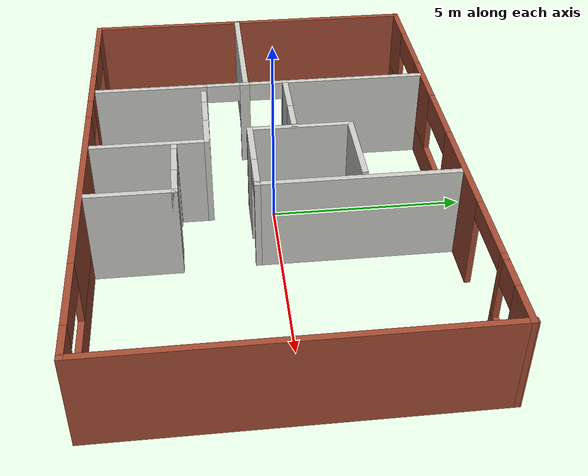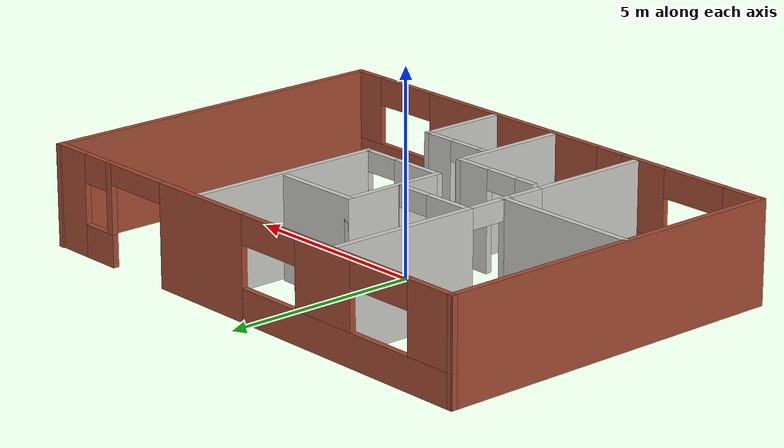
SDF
<?xml version='1.0'?>
<sdf version='1.6'>
  <model name='myhouse'>
    <pose frame=''>0.260364 -0.113951 0 0 -0 0</pose>
    <link name='Wall_38'>
      <collision name='Wall_38_Collision'>
        <geometry>
          <box>
            <size>9.28418 0.15 2.5</size>
          </box>
        </geometry>
        <pose frame=''>0 0 1.25 0 -0 0</pose>
      </collision>
      <visual name='Wall_38_Visual'>
        <pose frame=''>0 0 1.25 0 -0 0</pose>
        <geometry>
          <box>
            <size>9.28418 0.15 2.5</size>
          </box>
        </geometry>
        <material>
          <script>
            <uri>file://media/materials/scripts/gazebo.material</uri>
            <name>Gazebo/Bricks</name>
          </script>
          <ambient>0.996078 0.47451 0.0196078 1</ambient>
        </material>
      </visual>
      <pose frame=''>-6.69036 -4.9e-05 0 0 0 -1.5708</pose>
    </link>
    <link name='Wall_39'>
      <pose frame=''>0.000136 -4.56705 0 0 -0 0</pose>
      <visual name='Wall_39_Visual_0'>
        <pose frame=''>-6.18995 0 1.25 0 -0 0</pose>
        <geometry>
          <box>
            <size>1.1511 0.15 2.5</size>
          </box>
        </geometry>
        <material>
          <script>
            <uri>file://media/materials/scripts/gazebo.material</uri>
            <name>Gazebo/Bricks</name>
          </script>
          <ambient>0.996078 0.47451 0.0196078 1</ambient>
        </material>
      </visual>
      <collision name='Wall_39_Collision_0'>
        <geometry>
          <box>
            <size>1.1511 0.15 2.5</size>
          </box>
        </geometry>
        <pose frame=''>-6.18995 0 1.25 0 -0 0</pose>
      </collision>
      <visual name='Wall_39_Visual_1'>
        <pose frame=''>0.575549 0 0.4 0 -0 0</pose>
        <geometry>
          <box>
            <size>12.3799 0.15 0.8</size>
          </box>
        </geometry>
        <material>
          <script>
            <uri>file://media/materials/scripts/gazebo.material</uri>
            <name>Gazebo/Bricks</name>
          </script>
          <ambient>0.996078 0.47451 0.0196078 1</ambient>
        </material>
      </visual>
      <collision name='Wall_39_Collision_1'>
        <geometry>
          <box>
            <size>12.3799 0.15 0.8</size>
          </box>
        </geometry>
        <pose frame=''>0.575549 0 0.4 0 -0 0</pose>
      </collision>
      <visual name='Wall_39_Visual_2'>
        <pose frame=''>-3.14182 0 1.65 0 -0 0</pose>
        <geometry>
          <box>
            <size>1.34517 0.15 1.7</size>
          </box>
        </geometry>
        <material>
          <script>
            <uri>file://media/materials/scripts/gazebo.material</uri>
            <name>Gazebo/Bricks</name>
          </script>
          <ambient>0.996078 0.47451 0.0196078 1</ambient>
        </material>
      </visual>
      <collision name='Wall_39_Collision_2'>
        <geometry>
          <box>
            <size>1.34517 0.15 1.7</size>
          </box>
        </geometry>
        <pose frame=''>-3.14182 0 1.65 0 -0 0</pose>
      </collision>
      <visual name='Wall_39_Visual_3'>
        <pose frame=''>1.19211 0 1.65 0 -0 0</pose>
        <geometry>
          <box>
            <size>5.72269 0.15 1.7</size>
          </box>
        </geometry>
        <material>
          <script>
            <uri>file://media/materials/scripts/gazebo.material</uri>
            <name>Gazebo/Bricks</name>
          </script>
          <ambient>0.996078 0.47451 0.0196078 1</ambient>
        </material>
      </visual>
      <collision name='Wall_39_Collision_3'>
        <geometry>
          <box>
            <size>5.72269 0.15 1.7</size>
          </box>
        </geometry>
        <pose frame=''>1.19211 0 1.65 0 -0 0</pose>
      </collision>
      <visual name='Wall_39_Visual_4'>
        <pose frame=''>6.30948 0 1.65 0 -0 0</pose>
        <geometry>
          <box>
            <size>0.912041 0.15 1.7</size>
          </box>
        </geometry>
        <material>
          <script>
            <uri>file://media/materials/scripts/gazebo.material</uri>
            <name>Gazebo/Bricks</name>
          </script>
          <ambient>0.996078 0.47451 0.0196078 1</ambient>
        </material>
      </visual>
      <collision name='Wall_39_Collision_4'>
        <geometry>
          <box>
            <size>0.912041 0.15 1.7</size>
          </box>
        </geometry>
        <pose frame=''>6.30948 0 1.65 0 -0 0</pose>
      </collision>
      <visual name='Wall_39_Visual_5'>
        <pose frame=''>-4.7144 0 2.15 0 -0 0</pose>
        <geometry>
          <box>
            <size>1.8 0.15 0.7</size>
          </box>
        </geometry>
        <material>
          <script>
            <uri>file://media/materials/scripts/gazebo.material</uri>
            <name>Gazebo/Bricks</name>
          </script>
          <ambient>0.996078 0.47451 0.0196078 1</ambient>
        </material>
      </visual>
      <collision name='Wall_39_Collision_5'>
        <geometry>
          <box>
            <size>1.8 0.15 0.7</size>
          </box>
        </geometry>
        <pose frame=''>-4.7144 0 2.15 0 -0 0</pose>
      </collision>
      <visual name='Wall_39_Visual_6'>
        <pose frame=''>-2.06923 0 2.15 0 -0 0</pose>
        <geometry>
          <box>
            <size>0.8 0.15 0.7</size>
          </box>
        </geometry>
        <material>
          <script>
            <uri>file://media/materials/scripts/gazebo.material</uri>
            <name>Gazebo/Bricks</name>
          </script>
          <ambient>0.996078 0.47451 0.0196078 1</ambient>
        </material>
      </visual>
      <collision name='Wall_39_Collision_6'>
        <geometry>
          <box>
            <size>0.8 0.15 0.7</size>
          </box>
        </geometry>
        <pose frame=''>-2.06923 0 2.15 0 -0 0</pose>
      </collision>
      <visual name='Wall_39_Visual_7'>
        <pose frame=''>4.95346 0 2.15 0 -0 0</pose>
        <geometry>
          <box>
            <size>1.8 0.15 0.7</size>
          </box>
        </geometry>
        <material>
          <script>
            <uri>file://media/materials/scripts/gazebo.material</uri>
            <name>Gazebo/Bricks</name>
          </script>
          <ambient>0.996078 0.47451 0.0196078 1</ambient>
        </material>
      </visual>
      <collision name='Wall_39_Collision_7'>
        <geometry>
          <box>
            <size>1.8 0.15 0.7</size>
          </box>
        </geometry>
        <pose frame=''>4.95346 0 2.15 0 -0 0</pose>
      </collision>
    </link>
    <link name='Wall_40'>
      <collision name='Wall_40_Collision'>
        <geometry>
          <box>
            <size>9.28418 0.15 2.5</size>
          </box>
        </geometry>
        <pose frame=''>0 0 1.25 0 -0 0</pose>
      </collision>
      <visual name='Wall_40_Visual'>
        <pose frame=''>0 0 1.25 0 -0 0</pose>
        <geometry>
          <box>
            <size>9.28418 0.15 2.5</size>
          </box>
        </geometry>
        <material>
          <script>
            <uri>file://media/materials/scripts/gazebo.material</uri>
            <name>Gazebo/Bricks</name>
          </script>
          <ambient>0.996078 0.47451 0.0196078 1</ambient>
        </material>
      </visual>
      <pose frame=''>6.69014 4.1e-05 0 0 -0 1.57091</pose>
    </link>
    <link name='Wall_41'>
      <pose frame=''>-0.000364 4.55175 0 0 -0 3.13932</pose>
      <visual name='Wall_41_Visual_0'>
        <pose frame=''>-6.23299 0 1.25 0 -0 0</pose>
        <geometry>
          <box>
            <size>1.06429 0.15 2.5</size>
          </box>
        </geometry>
        <material>
          <script>
            <uri>file://media/materials/scripts/gazebo.material</uri>
            <name>Gazebo/Bricks</name>
          </script>
          <ambient>0.996078 0.47451 0.0196078 1</ambient>
        </material>
      </visual>
      <collision name='Wall_41_Collision_0'>
        <geometry>
          <box>
            <size>1.06429 0.15 2.5</size>
          </box>
        </geometry>
        <pose frame=''>-6.23299 0 1.25 0 -0 0</pose>
      </collision>
      <visual name='Wall_41_Visual_1'>
        <pose frame=''>-1.44735 0 1.25 0 -0 0</pose>
        <geometry>
          <box>
            <size>2.90668 0.15 2.5</size>
          </box>
        </geometry>
        <material>
          <script>
            <uri>file://media/materials/scripts/gazebo.material</uri>
            <name>Gazebo/Bricks</name>
          </script>
          <ambient>0.996078 0.47451 0.0196078 1</ambient>
        </material>
      </visual>
      <collision name='Wall_41_Collision_1'>
        <geometry>
          <box>
            <size>2.90668 0.15 2.5</size>
          </box>
        </geometry>
        <pose frame=''>-1.44735 0 1.25 0 -0 0</pose>
      </collision>
      <visual name='Wall_41_Visual_2'>
        <pose frame=''>-5.20076 0 0.4 0 -0 0</pose>
        <geometry>
          <box>
            <size>1.00016 0.15 0.8</size>
          </box>
        </geometry>
        <material>
          <script>
            <uri>file://media/materials/scripts/gazebo.material</uri>
            <name>Gazebo/Bricks</name>
          </script>
          <ambient>0.996078 0.47451 0.0196078 1</ambient>
        </material>
      </visual>
      <collision name='Wall_41_Collision_2'>
        <geometry>
          <box>
            <size>1.00016 0.15 0.8</size>
          </box>
        </geometry>
        <pose frame=''>-5.20076 0 0.4 0 -0 0</pose>
      </collision>
      <visual name='Wall_41_Visual_3'>
        <pose frame=''>3.38556 0 0.4 0 -0 0</pose>
        <geometry>
          <box>
            <size>6.75914 0.15 0.8</size>
          </box>
        </geometry>
        <material>
          <script>
            <uri>file://media/materials/scripts/gazebo.material</uri>
            <name>Gazebo/Bricks</name>
          </script>
          <ambient>0.996078 0.47451 0.0196078 1</ambient>
        </material>
      </visual>
      <collision name='Wall_41_Collision_3'>
        <geometry>
          <box>
            <size>6.75914 0.15 0.8</size>
          </box>
        </geometry>
        <pose frame=''>3.38556 0 0.4 0 -0 0</pose>
      </collision>
      <visual name='Wall_41_Visual_4'>
        <pose frame=''>-4.80076 0 1.65 0 -0 0</pose>
        <geometry>
          <box>
            <size>0.200157 0.15 1.7</size>
          </box>
        </geometry>
        <material>
          <script>
            <uri>file://media/materials/scripts/gazebo.material</uri>
            <name>Gazebo/Bricks</name>
          </script>
          <ambient>0.996078 0.47451 0.0196078 1</ambient>
        </material>
      </visual>
      <collision name='Wall_41_Collision_4'>
        <geometry>
          <box>
            <size>0.200157 0.15 1.7</size>
          </box>
        </geometry>
        <pose frame=''>-4.80076 0 1.65 0 -0 0</pose>
      </collision>
      <visual name='Wall_41_Visual_5'>
        <pose frame=''>-4.80076 0 1.65 0 -0 0</pose>
        <geometry>
          <box>
            <size>0.200157 0.15 1.7</size>
          </box>
        </geometry>
        <material>
          <script>
            <uri>file://media/materials/scripts/gazebo.material</uri>
            <name>Gazebo/Bricks</name>
          </script>
          <ambient>0.996078 0.47451 0.0196078 1</ambient>
        </material>
      </visual>
      <collision name='Wall_41_Collision_5'>
        <geometry>
          <box>
            <size>0.200157 0.15 1.7</size>
          </box>
        </geometry>
        <pose frame=''>-4.80076 0 1.65 0 -0 0</pose>
      </collision>
      <visual name='Wall_41_Visual_6'>
        <pose frame=''>2.70554 0 1.65 0 -0 0</pose>
        <geometry>
          <box>
            <size>1.79911 0.15 1.7</size>
          </box>
        </geometry>
        <material>
          <script>
            <uri>file://media/materials/scripts/gazebo.material</uri>
            <name>Gazebo/Bricks</name>
          </script>
          <ambient>0.996078 0.47451 0.0196078 1</ambient>
        </material>
      </visual>
      <collision name='Wall_41_Collision_6'>
        <geometry>
          <box>
            <size>1.79911 0.15 1.7</size>
          </box>
        </geometry>
        <pose frame=''>2.70554 0 1.65 0 -0 0</pose>
      </collision>
      <visual name='Wall_41_Visual_7'>
        <pose frame=''>6.08511 0 1.65 0 -0 0</pose>
        <geometry>
          <box>
            <size>1.36003 0.15 1.7</size>
          </box>
        </geometry>
        <material>
          <script>
            <uri>file://media/materials/scripts/gazebo.material</uri>
            <name>Gazebo/Bricks</name>
          </script>
          <ambient>0.996078 0.47451 0.0196078 1</ambient>
        </material>
      </visual>
      <collision name='Wall_41_Collision_7'>
        <geometry>
          <box>
            <size>1.36003 0.15 1.7</size>
          </box>
        </geometry>
        <pose frame=''>6.08511 0 1.65 0 -0 0</pose>
      </collision>
      <visual name='Wall_41_Visual_8'>
        <pose frame=''>-5.30084 0 2.15 0 -0 0</pose>
        <geometry>
          <box>
            <size>0.8 0.15 0.7</size>
          </box>
        </geometry>
        <material>
          <script>
            <uri>file://media/materials/scripts/gazebo.material</uri>
            <name>Gazebo/Bricks</name>
          </script>
          <ambient>0.996078 0.47451 0.0196078 1</ambient>
        </material>
      </visual>
      <collision name='Wall_41_Collision_8'>
        <geometry>
          <box>
            <size>0.8 0.15 0.7</size>
          </box>
        </geometry>
        <pose frame=''>-5.30084 0 2.15 0 -0 0</pose>
      </collision>
      <visual name='Wall_41_Visual_9'>
        <pose frame=''>0.905991 0 2.15 0 -0 0</pose>
        <geometry>
          <box>
            <size>1.8 0.15 0.7</size>
          </box>
        </geometry>
        <material>
          <script>
            <uri>file://media/materials/scripts/gazebo.material</uri>
            <name>Gazebo/Bricks</name>
          </script>
          <ambient>0.996078 0.47451 0.0196078 1</ambient>
        </material>
      </visual>
      <collision name='Wall_41_Collision_9'>
        <geometry>
          <box>
            <size>1.8 0.15 0.7</size>
          </box>
        </geometry>
        <pose frame=''>0.905991 0 2.15 0 -0 0</pose>
      </collision>
      <visual name='Wall_41_Visual_10'>
        <pose frame=''>4.5051 0 2.15 0 -0 0</pose>
        <geometry>
          <box>
            <size>1.8 0.15 0.7</size>
          </box>
        </geometry>
        <material>
          <script>
            <uri>file://media/materials/scripts/gazebo.material</uri>
            <name>Gazebo/Bricks</name>
          </script>
          <ambient>0.996078 0.47451 0.0196078 1</ambient>
        </material>
      </visual>
      <collision name='Wall_41_Collision_10'>
        <geometry>
          <box>
            <size>1.8 0.15 0.7</size>
          </box>
        </geometry>
        <pose frame=''>4.5051 0 2.15 0 -0 0</pose>
      </collision>
      <visual name='Wall_41_Visual_11'>
        <pose frame=''>-3.80068 0 2.25 0 -0 0</pose>
        <geometry>
          <box>
            <size>1.8 0.15 0.5</size>
          </box>
        </geometry>
        <material>
          <script>
            <uri>file://media/materials/scripts/gazebo.material</uri>
            <name>Gazebo/Bricks</name>
          </script>
          <ambient>0.996078 0.47451 0.0196078 1</ambient>
        </material>
      </visual>
      <collision name='Wall_41_Collision_11'>
        <geometry>
          <box>
            <size>1.8 0.15 0.5</size>
          </box>
        </geometry>
        <pose frame=''>-3.80068 0 2.25 0 -0 0</pose>
      </collision>
      <visual name='Wall_41_Visual_12'>
        <pose frame=''>-3.80068 0 2.25 0 -0 0</pose>
        <geometry>
          <box>
            <size>1.8 0.15 0.5</size>
          </box>
        </geometry>
        <material>
          <script>
            <uri>file://media/materials/scripts/gazebo.material</uri>
            <name>Gazebo/Bricks</name>
          </script>
          <ambient>0.996078 0.47451 0.0196078 1</ambient>
        </material>
      </visual>
      <collision name='Wall_41_Collision_12'>
        <geometry>
          <box>
            <size>1.8 0.15 0.5</size>
          </box>
        </geometry>
        <pose frame=''>-3.80068 0 2.25 0 -0 0</pose>
      </collision>
    </link>
    <link name='Wall_43'>
      <pose frame=''>-2.95236 0.022951 0 0 0 -1.5708</pose>
      <visual name='Wall_43_Visual_0'>
        <pose frame=''>-2.54618 0 1.25 0 -0 0</pose>
        <geometry>
          <box>
            <size>3.90763 0.15 2.5</size>
          </box>
        </geometry>
        <material>
          <script>
            <uri>file://media/materials/scripts/gazebo.material</uri>
            <name>Gazebo/CeilingTiled</name>
          </script>
          <ambient>0.760784 0.662745 0.627451 1</ambient>
        </material>
      </visual>
      <collision name='Wall_43_Collision_0'>
        <geometry>
          <box>
            <size>3.90763 0.15 2.5</size>
          </box>
        </geometry>
        <pose frame=''>-2.54618 0 1.25 0 -0 0</pose>
      </collision>
      <visual name='Wall_43_Visual_1'>
        <pose frame=''>0.442836 0 1.25 0 -0 0</pose>
        <geometry>
          <box>
            <size>0.270409 0.15 2.5</size>
          </box>
        </geometry>
        <material>
          <script>
            <uri>file://media/materials/scripts/gazebo.material</uri>
            <name>Gazebo/CeilingTiled</name>
          </script>
          <ambient>0.760784 0.662745 0.627451 1</ambient>
        </material>
      </visual>
      <collision name='Wall_43_Collision_1'>
        <geometry>
          <box>
            <size>0.270409 0.15 2.5</size>
          </box>
        </geometry>
        <pose frame=''>0.442836 0 1.25 0 -0 0</pose>
      </collision>
      <visual name='Wall_43_Visual_2'>
        <pose frame=''>2.98902 0 1.25 0 -0 0</pose>
        <geometry>
          <box>
            <size>3.02196 0.15 2.5</size>
          </box>
        </geometry>
        <material>
          <script>
            <uri>file://media/materials/scripts/gazebo.material</uri>
            <name>Gazebo/CeilingTiled</name>
          </script>
          <ambient>0.760784 0.662745 0.627451 1</ambient>
        </material>
      </visual>
      <collision name='Wall_43_Collision_2'>
        <geometry>
          <box>
            <size>3.02196 0.15 2.5</size>
          </box>
        </geometry>
        <pose frame=''>2.98902 0 1.25 0 -0 0</pose>
      </collision>
      <visual name='Wall_43_Visual_3'>
        <pose frame=''>-0.142368 0 2.25 0 -0 0</pose>
        <geometry>
          <box>
            <size>0.9 0.15 0.5</size>
          </box>
        </geometry>
        <material>
          <script>
            <uri>file://media/materials/scripts/gazebo.material</uri>
            <name>Gazebo/CeilingTiled</name>
          </script>
          <ambient>0.760784 0.662745 0.627451 1</ambient>
        </material>
      </visual>
      <collision name='Wall_43_Collision_3'>
        <geometry>
          <box>
            <size>0.9 0.15 0.5</size>
          </box>
        </geometry>
        <pose frame=''>-0.142368 0 2.25 0 -0 0</pose>
      </collision>
      <visual name='Wall_43_Visual_4'>
        <pose frame=''>1.02804 0 2.25 0 -0 0</pose>
        <geometry>
          <box>
            <size>0.9 0.15 0.5</size>
          </box>
        </geometry>
        <material>
          <script>
            <uri>file://media/materials/scripts/gazebo.material</uri>
            <name>Gazebo/CeilingTiled</name>
          </script>
          <ambient>0.760784 0.662745 0.627451 1</ambient>
        </material>
      </visual>
      <collision name='Wall_43_Collision_4'>
        <geometry>
          <box>
            <size>0.9 0.15 0.5</size>
          </box>
        </geometry>
        <pose frame=''>1.02804 0 2.25 0 -0 0</pose>
      </collision>
    </link>
    <link name='Wall_45'>
      <collision name='Wall_45_Collision'>
        <geometry>
          <box>
            <size>3.75 0.15 2.5</size>
          </box>
        </geometry>
        <pose frame=''>0 0 1.25 0 -0 0</pose>
      </collision>
      <visual name='Wall_45_Visual'>
        <pose frame=''>0 0 1.25 0 -0 0</pose>
        <geometry>
          <box>
            <size>3.75 0.15 2.5</size>
          </box>
        </geometry>
        <material>
          <script>
            <uri>file://media/materials/scripts/gazebo.material</uri>
            <name>Gazebo/CeilingTiled</name>
          </script>
          <ambient>0.760784 0.662745 0.627451 1</ambient>
        </material>
      </visual>
      <pose frame=''>-4.83736 -0.389049 0 0 -0 0</pose>
    </link>
    <link name='Wall_47'>
      <pose frame=''>-1.77981 0.698376 0 0 -0 0</pose>
      <visual name='Wall_47_Visual_0'>
        <pose frame=''>-0.514494 0 1.25 0 -0 0</pose>
        <geometry>
          <box>
            <size>1.22101 0.15 2.5</size>
          </box>
        </geometry>
        <material>
          <script>
            <uri>file://media/materials/scripts/gazebo.material</uri>
            <name>Gazebo/CeilingTiled</name>
          </script>
          <ambient>0.760784 0.662745 0.627451 1</ambient>
        </material>
      </visual>
      <collision name='Wall_47_Collision_0'>
        <geometry>
          <box>
            <size>1.22101 0.15 2.5</size>
          </box>
        </geometry>
        <pose frame=''>-0.514494 0 1.25 0 -0 0</pose>
      </collision>
      <visual name='Wall_47_Visual_1'>
        <pose frame=''>1.06051 0 1.25 0 -0 0</pose>
        <geometry>
          <box>
            <size>0.128988 0.15 2.5</size>
          </box>
        </geometry>
        <material>
          <script>
            <uri>file://media/materials/scripts/gazebo.material</uri>
            <name>Gazebo/CeilingTiled</name>
          </script>
          <ambient>0.760784 0.662745 0.627451 1</ambient>
        </material>
      </visual>
      <collision name='Wall_47_Collision_1'>
        <geometry>
          <box>
            <size>0.128988 0.15 2.5</size>
          </box>
        </geometry>
        <pose frame=''>1.06051 0 1.25 0 -0 0</pose>
      </collision>
      <visual name='Wall_47_Visual_2'>
        <pose frame=''>0.546012 0 2.25 0 -0 0</pose>
        <geometry>
          <box>
            <size>0.9 0.15 0.5</size>
          </box>
        </geometry>
        <material>
          <script>
            <uri>file://media/materials/scripts/gazebo.material</uri>
            <name>Gazebo/CeilingTiled</name>
          </script>
          <ambient>0.760784 0.662745 0.627451 1</ambient>
        </material>
      </visual>
      <collision name='Wall_47_Collision_2'>
        <geometry>
          <box>
            <size>0.9 0.15 0.5</size>
          </box>
        </geometry>
        <pose frame=''>0.546012 0 2.25 0 -0 0</pose>
      </collision>
    </link>
    <link name='Wall_49'>
      <collision name='Wall_49_Collision'>
        <geometry>
          <box>
            <size>5 0.15 2.5</size>
          </box>
        </geometry>
        <pose frame=''>0 0 1.25 0 -0 0</pose>
      </collision>
      <visual name='Wall_49_Visual'>
        <pose frame=''>0 0 1.25 0 -0 0</pose>
        <geometry>
          <box>
            <size>5 0.15 2.5</size>
          </box>
        </geometry>
        <material>
          <script>
            <uri>file://media/materials/scripts/gazebo.material</uri>
            <name>Gazebo/CeilingTiled</name>
          </script>
          <ambient>0.760784 0.662745 0.627451 1</ambient>
        </material>
      </visual>
      <pose frame=''>1.66164 1.97395 0 0 0 -1.5708</pose>
    </link>
    <link name='Wall_50'>
      <pose frame=''>0.486636 -0.451049 0 0 -0 3.14159</pose>
      <visual name='Wall_50_Visual_0'>
        <pose frame=''>-1.17305 0 1.25 0 -0 0</pose>
        <geometry>
          <box>
            <size>0.153899 0.15 2.5</size>
          </box>
        </geometry>
        <material>
          <script>
            <uri>file://media/materials/scripts/gazebo.material</uri>
            <name>Gazebo/CeilingTiled</name>
          </script>
          <ambient>0.760784 0.662745 0.627451 1</ambient>
        </material>
      </visual>
      <collision name='Wall_50_Collision_0'>
        <geometry>
          <box>
            <size>0.153899 0.15 2.5</size>
          </box>
        </geometry>
        <pose frame=''>-1.17305 0 1.25 0 -0 0</pose>
      </collision>
      <visual name='Wall_50_Visual_1'>
        <pose frame=''>0.526949 0 1.25 0 -0 0</pose>
        <geometry>
          <box>
            <size>1.4461 0.15 2.5</size>
          </box>
        </geometry>
        <material>
          <script>
            <uri>file://media/materials/scripts/gazebo.material</uri>
            <name>Gazebo/CeilingTiled</name>
          </script>
          <ambient>0.760784 0.662745 0.627451 1</ambient>
        </material>
      </visual>
      <collision name='Wall_50_Collision_1'>
        <geometry>
          <box>
            <size>1.4461 0.15 2.5</size>
          </box>
        </geometry>
        <pose frame=''>0.526949 0 1.25 0 -0 0</pose>
      </collision>
      <visual name='Wall_50_Visual_2'>
        <pose frame=''>-0.646101 0 2.25 0 -0 0</pose>
        <geometry>
          <box>
            <size>0.9 0.15 0.5</size>
          </box>
        </geometry>
        <material>
          <script>
            <uri>file://media/materials/scripts/gazebo.material</uri>
            <name>Gazebo/CeilingTiled</name>
          </script>
          <ambient>0.760784 0.662745 0.627451 1</ambient>
        </material>
      </visual>
      <collision name='Wall_50_Collision_2'>
        <geometry>
          <box>
            <size>0.9 0.15 0.5</size>
          </box>
        </geometry>
        <pose frame=''>-0.646101 0 2.25 0 -0 0</pose>
      </collision>
    </link>
    <link name='Wall_51'>
      <collision name='Wall_51_Collision'>
        <geometry>
          <box>
            <size>2.75 0.15 2.5</size>
          </box>
        </geometry>
        <pose frame=''>0 0 1.25 0 -0 0</pose>
      </collision>
      <visual name='Wall_51_Visual'>
        <pose frame=''>0 0 1.25 0 -0 0</pose>
        <geometry>
          <box>
            <size>2.75 0.15 2.5</size>
          </box>
        </geometry>
        <material>
          <script>
            <uri>file://media/materials/scripts/gazebo.material</uri>
            <name>Gazebo/CeilingTiled</name>
          </script>
          <ambient>0.760784 0.662745 0.627451 1</ambient>
        </material>
      </visual>
      <pose frame=''>-0.688364 0.848951 0 0 -0 1.5708</pose>
    </link>
    <link name='Wall_52'>
      <collision name='Wall_52_Collision'>
        <geometry>
          <box>
            <size>2.25 0.15 2.5</size>
          </box>
        </geometry>
        <pose frame=''>0 0 1.25 0 -0 0</pose>
      </collision>
      <visual name='Wall_52_Visual'>
        <pose frame=''>0 0 1.25 0 -0 0</pose>
        <geometry>
          <box>
            <size>2.25 0.15 2.5</size>
          </box>
        </geometry>
        <material>
          <script>
            <uri>file://media/materials/scripts/gazebo.material</uri>
            <name>Gazebo/CeilingTiled</name>
          </script>
          <ambient>0.760784 0.662745 0.627451 1</ambient>
        </material>
      </visual>
      <pose frame=''>0.361636 2.14895 0 0 -0 0</pose>
    </link>
    <link name='Wall_54'>
      <collision name='Wall_54_Collision'>
        <geometry>
          <box>
            <size>2.25 0.15 2.5</size>
          </box>
        </geometry>
        <pose frame=''>0 0 1.25 0 -0 0</pose>
      </collision>
      <visual name='Wall_54_Visual'>
        <pose frame=''>0 0 1.25 0 -0 0</pose>
        <geometry>
          <box>
            <size>2.25 0.15 2.5</size>
          </box>
        </geometry>
        <material>
          <script>
            <uri>file://media/materials/scripts/gazebo.material</uri>
            <name>Gazebo/CeilingTiled</name>
          </script>
          <ambient>0.760784 0.662745 0.627451 1</ambient>
        </material>
      </visual>
      <pose frame=''>1.74164 -3.43505 0 0 -0 1.5708</pose>
    </link>
    <link name='Wall_55'>
      <pose frame=''>0.816636 -2.38505 0 0 -0 3.14159</pose>
      <visual name='Wall_55_Visual_0'>
        <pose frame=''>-0.547756 0 1.25 0 -0 0</pose>
        <geometry>
          <box>
            <size>0.904487 0.15 2.5</size>
          </box>
        </geometry>
        <material>
          <script>
            <uri>file://media/materials/scripts/gazebo.material</uri>
            <name>Gazebo/CeilingTiled</name>
          </script>
          <ambient>0.760784 0.662745 0.627451 1</ambient>
        </material>
      </visual>
      <collision name='Wall_55_Collision_0'>
        <geometry>
          <box>
            <size>0.904487 0.15 2.5</size>
          </box>
        </geometry>
        <pose frame=''>-0.547756 0 1.25 0 -0 0</pose>
      </collision>
      <visual name='Wall_55_Visual_1'>
        <pose frame=''>0.902244 0 1.25 0 -0 0</pose>
        <geometry>
          <box>
            <size>0.195513 0.15 2.5</size>
          </box>
        </geometry>
        <material>
          <script>
            <uri>file://media/materials/scripts/gazebo.material</uri>
            <name>Gazebo/CeilingTiled</name>
          </script>
          <ambient>0.760784 0.662745 0.627451 1</ambient>
        </material>
      </visual>
      <collision name='Wall_55_Collision_1'>
        <geometry>
          <box>
            <size>0.195513 0.15 2.5</size>
          </box>
        </geometry>
        <pose frame=''>0.902244 0 1.25 0 -0 0</pose>
      </collision>
      <visual name='Wall_55_Visual_2'>
        <pose frame=''>0.354487 0 2.25 0 -0 0</pose>
        <geometry>
          <box>
            <size>0.9 0.15 0.5</size>
          </box>
        </geometry>
        <material>
          <script>
            <uri>file://media/materials/scripts/gazebo.material</uri>
            <name>Gazebo/CeilingTiled</name>
          </script>
          <ambient>0.760784 0.662745 0.627451 1</ambient>
        </material>
      </visual>
      <collision name='Wall_55_Collision_2'>
        <geometry>
          <box>
            <size>0.9 0.15 0.5</size>
          </box>
        </geometry>
        <pose frame=''>0.354487 0 2.25 0 -0 0</pose>
      </collision>
    </link>
    <link name='Wall_57'>
      <collision name='Wall_57_Collision'>
        <geometry>
          <box>
            <size>3 0.15 2.5</size>
          </box>
        </geometry>
        <pose frame=''>0 0 1.25 0 -0 0</pose>
      </collision>
      <visual name='Wall_57_Visual'>
        <pose frame=''>0 0 1.25 0 -0 0</pose>
        <geometry>
          <box>
            <size>3 0.15 2.5</size>
          </box>
        </geometry>
        <material>
          <script>
            <uri>file://media/materials/scripts/gazebo.material</uri>
            <name>Gazebo/CeilingTiled</name>
          </script>
          <ambient>0.760784 0.662745 0.627451 1</ambient>
        </material>
      </visual>
      <pose frame=''>-0.253364 -2.98005 0 0 -0 1.5708</pose>
    </link>
    <link name='Wall_58'>
      <pose frame=''>-1.42836 -1.55505 0 0 -0 3.14159</pose>
      <visual name='Wall_58_Visual_0'>
        <pose frame=''>-0.732595 0 1.25 0 -0 0</pose>
        <geometry>
          <box>
            <size>1.03481 0.15 2.5</size>
          </box>
        </geometry>
        <material>
          <script>
            <uri>file://media/materials/scripts/gazebo.material</uri>
            <name>Gazebo/CeilingTiled</name>
          </script>
          <ambient>0.760784 0.662745 0.627451 1</ambient>
        </material>
      </visual>
      <collision name='Wall_58_Collision_0'>
        <geometry>
          <box>
            <size>1.03481 0.15 2.5</size>
          </box>
        </geometry>
        <pose frame=''>-0.732595 0 1.25 0 -0 0</pose>
      </collision>
      <visual name='Wall_58_Visual_1'>
        <pose frame=''>0.967405 0 1.25 0 -0 0</pose>
        <geometry>
          <box>
            <size>0.565189 0.15 2.5</size>
          </box>
        </geometry>
        <material>
          <script>
            <uri>file://media/materials/scripts/gazebo.material</uri>
            <name>Gazebo/CeilingTiled</name>
          </script>
          <ambient>0.760784 0.662745 0.627451 1</ambient>
        </material>
      </visual>
      <collision name='Wall_58_Collision_1'>
        <geometry>
          <box>
            <size>0.565189 0.15 2.5</size>
          </box>
        </geometry>
        <pose frame=''>0.967405 0 1.25 0 -0 0</pose>
      </collision>
      <visual name='Wall_58_Visual_2'>
        <pose frame=''>0.234811 0 2.25 0 -0 0</pose>
        <geometry>
          <box>
            <size>0.9 0.15 0.5</size>
          </box>
        </geometry>
        <material>
          <script>
            <uri>file://media/materials/scripts/gazebo.material</uri>
            <name>Gazebo/CeilingTiled</name>
          </script>
          <ambient>0.760784 0.662745 0.627451 1</ambient>
        </material>
      </visual>
      <collision name='Wall_58_Collision_2'>
        <geometry>
          <box>
            <size>0.9 0.15 0.5</size>
          </box>
        </geometry>
        <pose frame=''>0.234811 0 2.25 0 -0 0</pose>
      </collision>
    </link>
    <static>1</static>
  </model>
</sdf>
